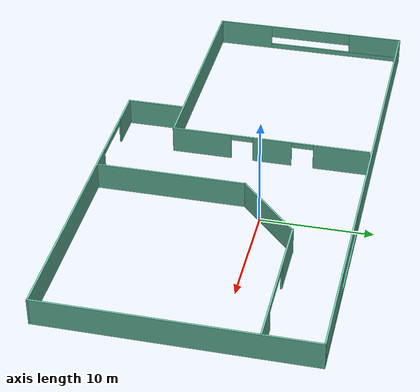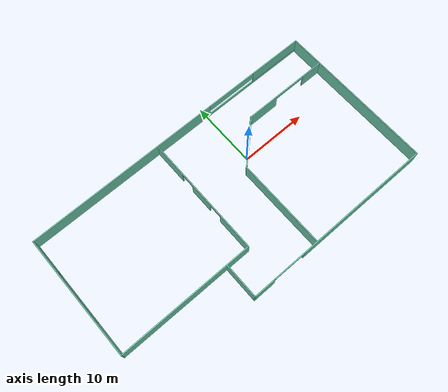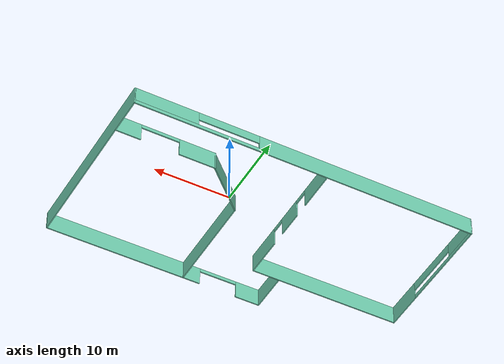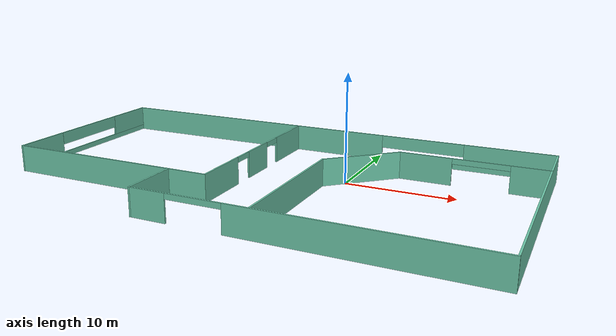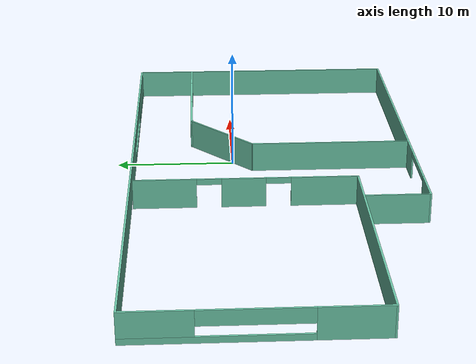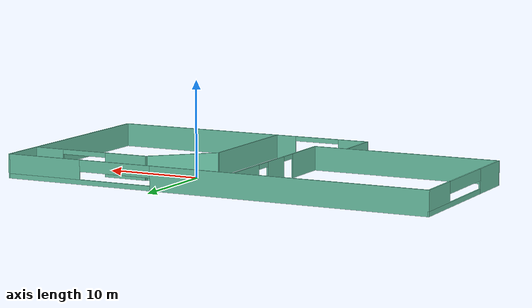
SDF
<?xml version='1.0'?>
<sdf version='1.6'>
  <model name='mybuilding'>
    <pose frame=''>-5.87967 -3.28462 0 0 -0 0</pose>
    <link name='Wall_47'>
      <pose frame=''>-22.8 2.625 0 0 -0 1.5708</pose>
      <visual name='Wall_47_Visual_0'>
        <pose frame=''>-6.58813 0 1.25 0 -0 0</pose>
        <geometry>
          <box>
            <size>5.32374 0.15 2.5</size>
          </box>
        </geometry>
        <material>
          <script>
            <uri>file://media/materials/scripts/gazebo.material</uri>
            <name>Gazebo/Grey</name>
          </script>
          <ambient>0.435294 0.796078 0.67451 1</ambient>
        </material>
        <meta>
          <layer>0</layer>
        </meta>
      </visual>
      <collision name='Wall_47_Collision_0'>
        <geometry>
          <box>
            <size>5.32374 0.15 2.5</size>
          </box>
        </geometry>
        <pose frame=''>-6.58813 0 1.25 0 -0 0</pose>
      </collision>
      <visual name='Wall_47_Visual_1'>
        <pose frame=''>2.66187 0 0.25 0 -0 0</pose>
        <geometry>
          <box>
            <size>13.1763 0.15 0.5</size>
          </box>
        </geometry>
        <material>
          <script>
            <uri>file://media/materials/scripts/gazebo.material</uri>
            <name>Gazebo/Grey</name>
          </script>
          <ambient>0.435294 0.796078 0.67451 1</ambient>
        </material>
        <meta>
          <layer>0</layer>
        </meta>
      </visual>
      <collision name='Wall_47_Collision_1'>
        <geometry>
          <box>
            <size>13.1763 0.15 0.5</size>
          </box>
        </geometry>
        <pose frame=''>2.66187 0 0.25 0 -0 0</pose>
      </collision>
      <visual name='Wall_47_Visual_2'>
        <pose frame=''>6.66187 0 1.5 0 -0 0</pose>
        <geometry>
          <box>
            <size>5.17626 0.15 2</size>
          </box>
        </geometry>
        <material>
          <script>
            <uri>file://media/materials/scripts/gazebo.material</uri>
            <name>Gazebo/Grey</name>
          </script>
          <ambient>0.435294 0.796078 0.67451 1</ambient>
        </material>
        <meta>
          <layer>0</layer>
        </meta>
      </visual>
      <collision name='Wall_47_Collision_2'>
        <geometry>
          <box>
            <size>5.17626 0.15 2</size>
          </box>
        </geometry>
        <pose frame=''>6.66187 0 1.5 0 -0 0</pose>
      </collision>
      <visual name='Wall_47_Visual_3'>
        <pose frame=''>0.073738 0 1.9 0 -0 0</pose>
        <geometry>
          <box>
            <size>8 0.15 1.2</size>
          </box>
        </geometry>
        <material>
          <script>
            <uri>file://media/materials/scripts/gazebo.material</uri>
            <name>Gazebo/Grey</name>
          </script>
          <ambient>0.435294 0.796078 0.67451 1</ambient>
        </material>
        <meta>
          <layer>0</layer>
        </meta>
      </visual>
      <collision name='Wall_47_Collision_3'>
        <geometry>
          <box>
            <size>8 0.15 1.2</size>
          </box>
        </geometry>
        <pose frame=''>0.073738 0 1.9 0 -0 0</pose>
      </collision>
    </link>
    <link name='Wall_48'>
      <pose frame=''>0 11.8 0 0 -0 0</pose>
      <visual name='Wall_48_Visual_0'>
        <pose frame=''>-8.19509 0 1.25 0 -0 0</pose>
        <geometry>
          <box>
            <size>29.3598 0.15 2.5</size>
          </box>
        </geometry>
        <material>
          <script>
            <uri>file://media/materials/scripts/gazebo.material</uri>
            <name>Gazebo/Grey</name>
          </script>
          <ambient>0.435294 0.796078 0.67451 1</ambient>
        </material>
        <meta>
          <layer>0</layer>
        </meta>
      </visual>
      <collision name='Wall_48_Collision_0'>
        <geometry>
          <box>
            <size>29.3598 0.15 2.5</size>
          </box>
        </geometry>
        <pose frame=''>-8.19509 0 1.25 0 -0 0</pose>
      </collision>
      <visual name='Wall_48_Visual_1'>
        <pose frame=''>14.6799 0 0.25 0 -0 0</pose>
        <geometry>
          <box>
            <size>16.3902 0.15 0.5</size>
          </box>
        </geometry>
        <material>
          <script>
            <uri>file://media/materials/scripts/gazebo.material</uri>
            <name>Gazebo/Grey</name>
          </script>
          <ambient>0.435294 0.796078 0.67451 1</ambient>
        </material>
        <meta>
          <layer>0</layer>
        </meta>
      </visual>
      <collision name='Wall_48_Collision_1'>
        <geometry>
          <box>
            <size>16.3902 0.15 0.5</size>
          </box>
        </geometry>
        <pose frame=''>14.6799 0 0.25 0 -0 0</pose>
      </collision>
      <visual name='Wall_48_Visual_2'>
        <pose frame=''>18.6799 0 1.5 0 -0 0</pose>
        <geometry>
          <box>
            <size>8.39019 0.15 2</size>
          </box>
        </geometry>
        <material>
          <script>
            <uri>file://media/materials/scripts/gazebo.material</uri>
            <name>Gazebo/Grey</name>
          </script>
          <ambient>0.435294 0.796078 0.67451 1</ambient>
        </material>
        <meta>
          <layer>0</layer>
        </meta>
      </visual>
      <collision name='Wall_48_Collision_2'>
        <geometry>
          <box>
            <size>8.39019 0.15 2</size>
          </box>
        </geometry>
        <pose frame=''>18.6799 0 1.5 0 -0 0</pose>
      </collision>
      <visual name='Wall_48_Visual_3'>
        <pose frame=''>10.4848 0 1.9 0 -0 0</pose>
        <geometry>
          <box>
            <size>8 0.15 1.2</size>
          </box>
        </geometry>
        <material>
          <script>
            <uri>file://media/materials/scripts/gazebo.material</uri>
            <name>Gazebo/Grey</name>
          </script>
          <ambient>0.435294 0.796078 0.67451 1</ambient>
        </material>
        <meta>
          <layer>0</layer>
        </meta>
      </visual>
      <collision name='Wall_48_Collision_3'>
        <geometry>
          <box>
            <size>8 0.15 1.2</size>
          </box>
        </geometry>
        <pose frame=''>10.4848 0 1.9 0 -0 0</pose>
      </collision>
    </link>
    <link name='Wall_49'>
      <collision name='Wall_49_Collision'>
        <geometry>
          <box>
            <size>23.75 0.15 2.5</size>
          </box>
        </geometry>
        <pose frame=''>0 0 1.25 0 -0 0</pose>
      </collision>
      <visual name='Wall_49_Visual'>
        <pose frame=''>0 0 1.25 0 -0 0</pose>
        <geometry>
          <box>
            <size>23.75 0.15 2.5</size>
          </box>
        </geometry>
        <material>
          <script>
            <uri>file://media/materials/scripts/gazebo.material</uri>
            <name>Gazebo/Grey</name>
          </script>
          <ambient>0.435294 0.796078 0.67451 1</ambient>
        </material>
        <meta>
          <layer>0</layer>
        </meta>
      </visual>
      <pose frame=''>22.8 0 0 0 0 -1.5708</pose>
    </link>
    <link name='Wall_51'>
      <collision name='Wall_51_Collision'>
        <geometry>
          <box>
            <size>20.25 0.15 2.5</size>
          </box>
        </geometry>
        <pose frame=''>0 0 1.25 0 -0 0</pose>
      </collision>
      <visual name='Wall_51_Visual'>
        <pose frame=''>0 0 1.25 0 -0 0</pose>
        <geometry>
          <box>
            <size>20.25 0.15 2.5</size>
          </box>
        </geometry>
        <material>
          <script>
            <uri>file://media/materials/scripts/gazebo.material</uri>
            <name>Gazebo/Grey</name>
          </script>
          <ambient>0.435294 0.796078 0.67451 1</ambient>
        </material>
        <meta>
          <layer>0</layer>
        </meta>
      </visual>
      <pose frame=''>-12.75 -6.55 0 0 -0 0</pose>
    </link>
    <link name='Wall_52'>
      <pose frame=''>-2.7 2.5 0 0 -0 1.5708</pose>
      <visual name='Wall_52_Visual_0'>
        <pose frame=''>-6.37732 0 1.25 0 -0 0</pose>
        <geometry>
          <box>
            <size>5.49535 0.15 2.5</size>
          </box>
        </geometry>
        <material>
          <script>
            <uri>file://media/materials/scripts/gazebo.material</uri>
            <name>Gazebo/Grey</name>
          </script>
          <ambient>0.435294 0.796078 0.67451 1</ambient>
        </material>
        <meta>
          <layer>0</layer>
        </meta>
      </visual>
      <collision name='Wall_52_Collision_0'>
        <geometry>
          <box>
            <size>5.49535 0.15 2.5</size>
          </box>
        </geometry>
        <pose frame=''>-6.37732 0 1.25 0 -0 0</pose>
      </collision>
      <visual name='Wall_52_Visual_1'>
        <pose frame=''>0.171549 0 1.25 0 -0 0</pose>
        <geometry>
          <box>
            <size>3.60239 0.15 2.5</size>
          </box>
        </geometry>
        <material>
          <script>
            <uri>file://media/materials/scripts/gazebo.material</uri>
            <name>Gazebo/Grey</name>
          </script>
          <ambient>0.435294 0.796078 0.67451 1</ambient>
        </material>
        <meta>
          <layer>0</layer>
        </meta>
      </visual>
      <collision name='Wall_52_Collision_1'>
        <geometry>
          <box>
            <size>3.60239 0.15 2.5</size>
          </box>
        </geometry>
        <pose frame=''>0.171549 0 1.25 0 -0 0</pose>
      </collision>
      <visual name='Wall_52_Visual_2'>
        <pose frame=''>6.54887 0 1.25 0 -0 0</pose>
        <geometry>
          <box>
            <size>5.15225 0.15 2.5</size>
          </box>
        </geometry>
        <material>
          <script>
            <uri>file://media/materials/scripts/gazebo.material</uri>
            <name>Gazebo/Grey</name>
          </script>
          <ambient>0.435294 0.796078 0.67451 1</ambient>
        </material>
        <meta>
          <layer>0</layer>
        </meta>
      </visual>
      <collision name='Wall_52_Collision_2'>
        <geometry>
          <box>
            <size>5.15225 0.15 2.5</size>
          </box>
        </geometry>
        <pose frame=''>6.54887 0 1.25 0 -0 0</pose>
      </collision>
      <visual name='Wall_52_Visual_3'>
        <pose frame=''>-2.62965 0 2.25 0 -0 0</pose>
        <geometry>
          <box>
            <size>2 0.15 0.5</size>
          </box>
        </geometry>
        <material>
          <script>
            <uri>file://media/materials/scripts/gazebo.material</uri>
            <name>Gazebo/Grey</name>
          </script>
          <ambient>0.435294 0.796078 0.67451 1</ambient>
        </material>
        <meta>
          <layer>0</layer>
        </meta>
      </visual>
      <collision name='Wall_52_Collision_3'>
        <geometry>
          <box>
            <size>2 0.15 0.5</size>
          </box>
        </geometry>
        <pose frame=''>-2.62965 0 2.25 0 -0 0</pose>
      </collision>
      <visual name='Wall_52_Visual_4'>
        <pose frame=''>2.97275 0 2.25 0 -0 0</pose>
        <geometry>
          <box>
            <size>2 0.15 0.5</size>
          </box>
        </geometry>
        <material>
          <script>
            <uri>file://media/materials/scripts/gazebo.material</uri>
            <name>Gazebo/Grey</name>
          </script>
          <ambient>0.435294 0.796078 0.67451 1</ambient>
        </material>
        <meta>
          <layer>0</layer>
        </meta>
      </visual>
      <collision name='Wall_52_Collision_4'>
        <geometry>
          <box>
            <size>2 0.15 0.5</size>
          </box>
        </geometry>
        <pose frame=''>2.97275 0 2.25 0 -0 0</pose>
      </collision>
    </link>
    <link name='Wall_54'>
      <pose frame=''>8.25 -11.8 0 0 -0 3.14159</pose>
      <visual name='Wall_54_Visual_0'>
        <pose frame=''>-4.19184 0 1.25 0 -0 0</pose>
        <geometry>
          <box>
            <size>20.8663 0.15 2.5</size>
          </box>
        </geometry>
        <material>
          <script>
            <uri>file://media/materials/scripts/gazebo.material</uri>
            <name>Gazebo/Grey</name>
          </script>
          <ambient>0.435294 0.796078 0.67451 1</ambient>
        </material>
        <meta>
          <layer>0</layer>
        </meta>
      </visual>
      <collision name='Wall_54_Collision_0'>
        <geometry>
          <box>
            <size>20.8663 0.15 2.5</size>
          </box>
        </geometry>
        <pose frame=''>-4.19184 0 1.25 0 -0 0</pose>
      </collision>
      <visual name='Wall_54_Visual_1'>
        <pose frame=''>12.9332 0 1.25 0 -0 0</pose>
        <geometry>
          <box>
            <size>3.38367 0.15 2.5</size>
          </box>
        </geometry>
        <material>
          <script>
            <uri>file://media/materials/scripts/gazebo.material</uri>
            <name>Gazebo/Grey</name>
          </script>
          <ambient>0.435294 0.796078 0.67451 1</ambient>
        </material>
        <meta>
          <layer>0</layer>
        </meta>
      </visual>
      <collision name='Wall_54_Collision_1'>
        <geometry>
          <box>
            <size>3.38367 0.15 2.5</size>
          </box>
        </geometry>
        <pose frame=''>12.9332 0 1.25 0 -0 0</pose>
      </collision>
      <visual name='Wall_54_Visual_2'>
        <pose frame=''>8.74133 0 2.25 0 -0 0</pose>
        <geometry>
          <box>
            <size>5 0.15 0.5</size>
          </box>
        </geometry>
        <material>
          <script>
            <uri>file://media/materials/scripts/gazebo.material</uri>
            <name>Gazebo/Grey</name>
          </script>
          <ambient>0.435294 0.796078 0.67451 1</ambient>
        </material>
        <meta>
          <layer>0</layer>
        </meta>
      </visual>
      <collision name='Wall_54_Collision_2'>
        <geometry>
          <box>
            <size>5 0.15 0.5</size>
          </box>
        </geometry>
        <pose frame=''>8.74133 0 2.25 0 -0 0</pose>
      </collision>
    </link>
    <link name='Wall_55'>
      <collision name='Wall_55_Collision'>
        <geometry>
          <box>
            <size>5.25 0.15 2.5</size>
          </box>
        </geometry>
        <pose frame=''>0 0 1.25 0 -0 0</pose>
      </collision>
      <visual name='Wall_55_Visual'>
        <pose frame=''>0 0 1.25 0 -0 0</pose>
        <geometry>
          <box>
            <size>5.25 0.15 2.5</size>
          </box>
        </geometry>
        <material>
          <script>
            <uri>file://media/materials/scripts/gazebo.material</uri>
            <name>Gazebo/Grey</name>
          </script>
          <ambient>0.435294 0.796078 0.67451 1</ambient>
        </material>
        <meta>
          <layer>0</layer>
        </meta>
      </visual>
      <pose frame=''>-6.3 -9.25 0 0 -0 1.5708</pose>
    </link>
    <link name='Wall_57'>
      <collision name='Wall_57_Collision'>
        <geometry>
          <box>
            <size>13.5 0.15 2.5</size>
          </box>
        </geometry>
        <pose frame=''>0 0 1.25 0 -0 0</pose>
      </collision>
      <visual name='Wall_57_Visual'>
        <pose frame=''>0 0 1.25 0 -0 0</pose>
        <geometry>
          <box>
            <size>13.5 0.15 2.5</size>
          </box>
        </geometry>
        <material>
          <script>
            <uri>file://media/materials/scripts/gazebo.material</uri>
            <name>Gazebo/Grey</name>
          </script>
          <ambient>0.435294 0.796078 0.67451 1</ambient>
        </material>
        <meta>
          <layer>0</layer>
        </meta>
      </visual>
      <pose frame=''>4.2858 -5.01447 0 0 -0 1.5708</pose>
    </link>
    <link name='Wall_58'>
      <collision name='Wall_58_Collision'>
        <geometry>
          <box>
            <size>7.70047 0.15 2.5</size>
          </box>
        </geometry>
        <pose frame=''>0 0 1.25 0 -0 0</pose>
      </collision>
      <visual name='Wall_58_Visual'>
        <pose frame=''>0 0 1.25 0 -0 0</pose>
        <geometry>
          <box>
            <size>7.70047 0.15 2.5</size>
          </box>
        </geometry>
        <material>
          <script>
            <uri>file://media/materials/scripts/gazebo.material</uri>
            <name>Gazebo/Grey</name>
          </script>
          <ambient>0.435294 0.796078 0.67451 1</ambient>
        </material>
        <meta>
          <layer>0</layer>
        </meta>
      </visual>
      <pose frame=''>7.02434 4.25914 0 0 -0 0.759188</pose>
    </link>
    <link name='Wall_59'>
      <pose frame=''>16.2429 6.85776 0 0 -0 0</pose>
      <visual name='Wall_59_Visual_0'>
        <pose frame=''>-4.18503 0 1.25 0 -0 0</pose>
        <geometry>
          <box>
            <size>4.87994 0.15 2.5</size>
          </box>
        </geometry>
        <material>
          <script>
            <uri>file://media/materials/scripts/gazebo.material</uri>
            <name>Gazebo/Grey</name>
          </script>
          <ambient>0.435294 0.796078 0.67451 1</ambient>
        </material>
        <meta>
          <layer>0</layer>
        </meta>
      </visual>
      <collision name='Wall_59_Collision_0'>
        <geometry>
          <box>
            <size>4.87994 0.15 2.5</size>
          </box>
        </geometry>
        <pose frame=''>-4.18503 0 1.25 0 -0 0</pose>
      </collision>
      <visual name='Wall_59_Visual_1'>
        <pose frame=''>4.93997 0 1.25 0 -0 0</pose>
        <geometry>
          <box>
            <size>3.37006 0.15 2.5</size>
          </box>
        </geometry>
        <material>
          <script>
            <uri>file://media/materials/scripts/gazebo.material</uri>
            <name>Gazebo/Grey</name>
          </script>
          <ambient>0.435294 0.796078 0.67451 1</ambient>
        </material>
        <meta>
          <layer>0</layer>
        </meta>
      </visual>
      <collision name='Wall_59_Collision_1'>
        <geometry>
          <box>
            <size>3.37006 0.15 2.5</size>
          </box>
        </geometry>
        <pose frame=''>4.93997 0 1.25 0 -0 0</pose>
      </collision>
      <visual name='Wall_59_Visual_2'>
        <pose frame=''>0.75494 0 2.25 0 -0 0</pose>
        <geometry>
          <box>
            <size>5 0.15 0.5</size>
          </box>
        </geometry>
        <material>
          <script>
            <uri>file://media/materials/scripts/gazebo.material</uri>
            <name>Gazebo/Grey</name>
          </script>
          <ambient>0.435294 0.796078 0.67451 1</ambient>
        </material>
        <meta>
          <layer>0</layer>
        </meta>
      </visual>
      <collision name='Wall_59_Collision_2'>
        <geometry>
          <box>
            <size>5 0.15 0.5</size>
          </box>
        </geometry>
        <pose frame=''>0.75494 0 2.25 0 -0 0</pose>
      </collision>
    </link>
    <static>1</static>
  </model>
</sdf>
